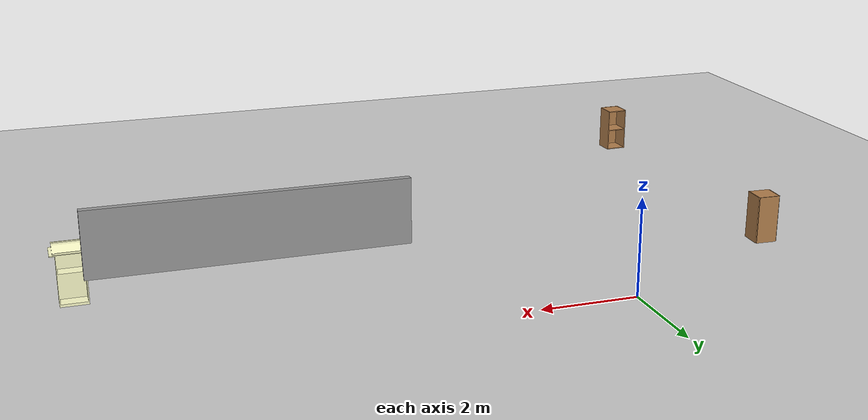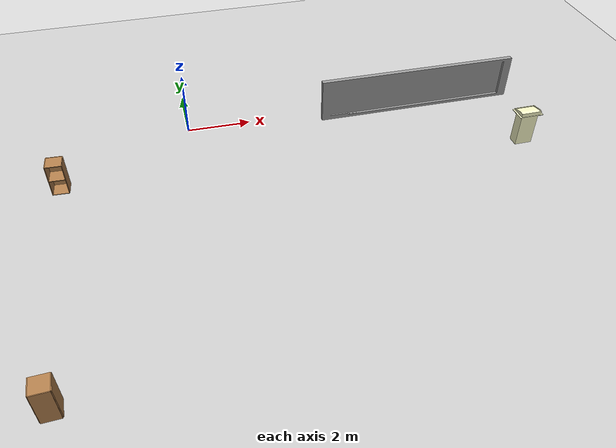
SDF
<sdf version="1.6">
 <world name="default">
  <model name="ground_plane">
   <static>1</static>
   <link name="link">
    <collision name="collision">
     <geometry><plane><normal>0 0 1</normal><size>100 100</size></plane></geometry>
     <surface>
      <contact><collide_bitmask>65535</collide_bitmask></contact>
      <friction><ode><mu>100</mu><mu2>50</mu2></ode></friction>
     </surface>
    </collision>
    <visual name="visual">
     <cast_shadows>0</cast_shadows>
     <geometry><plane><normal>0 0 1</normal><size>100 100</size></plane></geometry>
     <material>
      <script><uri>file://media/materials/scripts/gazebo.material</uri><name>Gazebo/Grey</name></script>
     </material>
    </visual>
   </link>
  </model>
  <model name="black_board_clone">
   <link name="link_6">
    <pose>1e-06 5e-06 0 0 0 -1.57362</pose>
    <inertial>
     <mass>1</mass>
     <inertia>
      <ixx>0.166667</ixx>
      <ixy>0</ixy>
      <ixz>0</ixz>
      <iyy>0.166667</iyy>
      <iyz>0</iyz>
      <izz>0.166667</izz>
     </inertia>
    </inertial>
    <visual name="visual">
     <geometry>
      <mesh>
       <uri>/home/piyush/rm100/src/robomuse_simulation/models/meshes/black_board/model.dae</uri>
       <scale>1 3 1</scale>
      </mesh>
     </geometry>
     <material>
      <lighting>1</lighting>
      <script><uri>file://media/materials/scripts/gazebo.material</uri><name>Gazebo/Grey</name></script>
      <shader type="pixel"><normal_map>__default__</normal_map></shader>
      <ambient>0.3 0.3 0.3 1</ambient>
      <diffuse>0.7 0.7 0.7 1</diffuse>
      <specular>0.01 0.01 0.01 1</specular>
      <emissive>0 0 0 1</emissive>
     </material>
    </visual>
    <collision name="collision">
     <geometry>
      <mesh>
       <uri>/home/piyush/rm100/src/robomuse_simulation/models/meshes/black_board/model.dae</uri>
       <scale>1 3 1</scale>
      </mesh>
     </geometry>
     <surface>
      <friction>
       <ode><mu>1</mu><mu2>1</mu2><fdir1>0 0 0</fdir1><slip1>0</slip1><slip2>0</slip2></ode>
       <torsional>
        <coefficient>1</coefficient>
        <patch_radius>0</patch_radius>
        <surface_radius>0</surface_radius>
        <use_patch_radius>1</use_patch_radius>
        <ode><slip>0</slip></ode>
       </torsional>
      </friction>
      <bounce><restitution_coefficient>0</restitution_coefficient><threshold>1e+06</threshold></bounce>
      <contact>
       <collide_without_contact>0</collide_without_contact>
       <collide_without_contact_bitmask>1</collide_without_contact_bitmask>
       <collide_bitmask>1</collide_bitmask>
       <ode>
        <soft_cfm>0</soft_cfm>
        <soft_erp>0.2</soft_erp>
        <kp>1e+13</kp>
        <kd>1</kd>
        <max_vel>0.01</max_vel>
        <min_depth>0</min_depth>
       </ode>
       <bullet>
        <split_impulse>1</split_impulse>
        <split_impulse_penetration_threshold>-0.01</split_impulse_penetration_threshold>
        <soft_cfm>0</soft_cfm>
        <soft_erp>0.2</soft_erp>
        <kp>1e+13</kp>
        <kd>1</kd>
       </bullet>
      </contact>
     </surface>
    </collision>
   </link>
   <static>1</static>
   <pose>10.088 -2.66438 0.439748 0 -0 3.13693</pose>
  </model>
  <model name="lecture_stand_0">
   <link name="link_0">
    <inertial>
     <mass>10</mass>
     <inertia>
      <ixx>0.166667</ixx>
      <ixy>0</ixy>
      <ixz>0</ixz>
      <iyy>0.166667</iyy>
      <iyz>0</iyz>
      <izz>0.166667</izz>
     </inertia>
    </inertial>
    <visual name="visual">
     <geometry>
      <mesh>
       <uri>/home/piyush/rm100/src/robomuse_simulation/models/meshes/lecture_stand/model.dae</uri>
       <scale>1.1 1.1 1.1</scale>
      </mesh>
     </geometry>
     <material>
      <lighting>1</lighting>
      <script><uri>file://media/materials/scripts/gazebo.material</uri><name>Gazebo/Grey</name></script>
      <shader type="normal_map_tangent_space"><normal_map>__default__</normal_map></shader>
      <ambient>0.126 0.099 0.016 1</ambient>
      <diffuse>1 1 0.8 1</diffuse>
      <specular>0.01 0.01 0.01 1</specular>
      <emissive>0 0 0 1</emissive>
     </material>
    </visual>
    <collision name="collision">
     <geometry>
      <mesh>
       <uri>/home/piyush/rm100/src/robomuse_simulation/models/meshes/lecture_stand/model.dae</uri>
       <scale>1.1 1.1 1.1</scale>
      </mesh>
     </geometry>
     <surface>
      <friction>
       <ode><mu>1</mu><mu2>1</mu2><fdir1>0 0 0</fdir1><slip1>0</slip1><slip2>0</slip2></ode>
       <torsional>
        <coefficient>1</coefficient>
        <patch_radius>0</patch_radius>
        <surface_radius>0</surface_radius>
        <use_patch_radius>1</use_patch_radius>
        <ode><slip>0</slip></ode>
       </torsional>
      </friction>
      <bounce><restitution_coefficient>0</restitution_coefficient><threshold>1e+06</threshold></bounce>
      <contact>
       <collide_without_contact>0</collide_without_contact>
       <collide_without_contact_bitmask>1</collide_without_contact_bitmask>
       <collide_bitmask>1</collide_bitmask>
       <ode>
        <soft_cfm>0</soft_cfm>
        <soft_erp>0.2</soft_erp>
        <kp>1e+13</kp>
        <kd>1</kd>
        <max_vel>0.01</max_vel>
        <min_depth>0</min_depth>
       </ode>
       <bullet>
        <split_impulse>1</split_impulse>
        <split_impulse_penetration_threshold>-0.01</split_impulse_penetration_threshold>
        <soft_cfm>0</soft_cfm>
        <soft_erp>0.2</soft_erp>
        <kp>1e+13</kp>
        <kd>1</kd>
       </bullet>
      </contact>
     </surface>
    </collision>
   </link>
   <static>1</static>
   <pose>8.32938 -3.73875 0 0 -0 0</pose>
  </model>
  <model name="cabinet">
   <static>1</static>
   <link name="cabinet_bottom_plate">
    <inertial>
     <pose>0 0 -1 0 -0 0</pose>
     <inertia><ixx>2.05</ixx><ixy>0</ixy><ixz>0</ixz><iyy>2.05</iyy><iyz>0</iyz><izz>2.05</izz></inertia>
     <mass>25</mass>
    </inertial>
    <collision name="cabinet_bottom_plate_geom">
     <pose>0 0 0.01 0 -0 0</pose>
     <geometry><box><size>0.45 0.45 0.02</size></box></geometry>
    </collision>
    <visual name="cabinet_bottom_plate_geom_visual">
     <pose>0 0 0.01 0 -0 0</pose>
     <geometry><box><size>0.45 0.45 0.02</size></box></geometry>
     <material>
      <script><uri>file://media/materials/scripts/gazebo.material</uri><name>Gazebo/Wood</name></script>
     </material>
    </visual>
    <collision name="cabinet_bottom_plate_geom_cabinet_back_plate">
     <pose>0.235 0 0.51 0 -0 0</pose>
     <geometry><box><size>0.02 0.45 1.02</size></box></geometry>
    </collision>
    <visual name="cabinet_bottom_plate_geom_cabinet_back_plate_visual">
     <pose>0.235 0 0.51 0 -0 0</pose>
     <geometry><box><size>0.02 0.45 1.02</size></box></geometry>
     <material>
      <script><uri>file://media/materials/scripts/gazebo.material</uri><name>Gazebo/Wood</name></script>
     </material>
    </visual>
    <collision name="cabinet_bottom_plate_geom_cabinet_left_plate">
     <pose>0 0.235 0.51 0 -0 0</pose>
     <geometry><box><size>0.45 0.02 1.02</size></box></geometry>
    </collision>
    <visual name="cabinet_bottom_plate_geom_cabinet_left_plate_visual">
     <pose>0 0.235 0.51 0 -0 0</pose>
     <geometry><box><size>0.45 0.02 1.02</size></box></geometry>
     <material>
      <script><uri>file://media/materials/scripts/gazebo.material</uri><name>Gazebo/Wood</name></script>
     </material>
    </visual>
    <collision name="cabinet_bottom_plate_geom_cabinet_middle_plate">
     <pose>0 0 0.51 0 -0 0</pose>
     <geometry><box><size>0.45 0.45 0.02</size></box></geometry>
    </collision>
    <visual name="cabinet_bottom_plate_geom_cabinet_middle_plate_visual">
     <pose>0 0 0.51 0 -0 0</pose>
     <geometry><box><size>0.45 0.45 0.02</size></box></geometry>
     <material>
      <script><uri>file://media/materials/scripts/gazebo.material</uri><name>Gazebo/Wood</name></script>
     </material>
    </visual>
    <collision name="cabinet_bottom_plate_geom_cabinet_right_plate">
     <pose>0 -0.235 0.51 0 -0 0</pose>
     <geometry><box><size>0.45 0.02 1.02</size></box></geometry>
    </collision>
    <visual name="cabinet_bottom_plate_geom_cabinet_right_plate_visual">
     <pose>0 -0.235 0.51 0 -0 0</pose>
     <geometry><box><size>0.45 0.02 1.02</size></box></geometry>
     <material>
      <script><uri>file://media/materials/scripts/gazebo.material</uri><name>Gazebo/Wood</name></script>
     </material>
    </visual>
    <collision name="cabinet_bottom_plate_geom_cabinet_top_plate">
     <pose>0 0 1.01 0 -0 0</pose>
     <geometry><box><size>0.45 0.45 0.02</size></box></geometry>
    </collision>
    <visual name="cabinet_bottom_plate_geom_cabinet_top_plate_visual">
     <pose>0 0 1.01 0 -0 0</pose>
     <geometry><box><size>0.45 0.45 0.02</size></box></geometry>
     <material>
      <script><uri>file://media/materials/scripts/gazebo.material</uri><name>Gazebo/Wood</name></script>
     </material>
    </visual>
   </link>
   <pose>-4.04321 -9.41568 0 0 0 -1.53384</pose>
  </model>
  <model name="cabinet_clone_0_clone">
   <static>1</static>
   <link name="cabinet_bottom_plate">
    <inertial>
     <pose>0 0 -1 0 -0 0</pose>
     <inertia><ixx>2.05</ixx><ixy>0</ixy><ixz>0</ixz><iyy>2.05</iyy><iyz>0</iyz><izz>2.05</izz></inertia>
     <mass>25</mass>
    </inertial>
    <collision name="cabinet_bottom_plate_geom">
     <pose>0 0 0.01 0 -0 0</pose>
     <geometry><box><size>0.45 0.45 0.02</size></box></geometry>
    </collision>
    <visual name="cabinet_bottom_plate_geom_visual">
     <pose>0 0 0.01 0 -0 0</pose>
     <geometry><box><size>0.45 0.45 0.02</size></box></geometry>
     <material>
      <script><uri>file://media/materials/scripts/gazebo.material</uri><name>Gazebo/Wood</name></script>
     </material>
    </visual>
    <collision name="cabinet_bottom_plate_geom_cabinet_back_plate">
     <pose>0.235 0 0.51 0 -0 0</pose>
     <geometry><box><size>0.02 0.45 1.02</size></box></geometry>
    </collision>
    <visual name="cabinet_bottom_plate_geom_cabinet_back_plate_visual">
     <pose>0.235 0 0.51 0 -0 0</pose>
     <geometry><box><size>0.02 0.45 1.02</size></box></geometry>
     <material>
      <script><uri>file://media/materials/scripts/gazebo.material</uri><name>Gazebo/Wood</name></script>
     </material>
    </visual>
    <collision name="cabinet_bottom_plate_geom_cabinet_left_plate">
     <pose>0 0.235 0.51 0 -0 0</pose>
     <geometry><box><size>0.45 0.02 1.02</size></box></geometry>
    </collision>
    <visual name="cabinet_bottom_plate_geom_cabinet_left_plate_visual">
     <pose>0 0.235 0.51 0 -0 0</pose>
     <geometry><box><size>0.45 0.02 1.02</size></box></geometry>
     <material>
      <script><uri>file://media/materials/scripts/gazebo.material</uri><name>Gazebo/Wood</name></script>
     </material>
    </visual>
    <collision name="cabinet_bottom_plate_geom_cabinet_middle_plate">
     <pose>0 0 0.51 0 -0 0</pose>
     <geometry><box><size>0.45 0.45 0.02</size></box></geometry>
    </collision>
    <visual name="cabinet_bottom_plate_geom_cabinet_middle_plate_visual">
     <pose>0 0 0.51 0 -0 0</pose>
     <geometry><box><size>0.45 0.45 0.02</size></box></geometry>
     <material>
      <script><uri>file://media/materials/scripts/gazebo.material</uri><name>Gazebo/Wood</name></script>
     </material>
    </visual>
    <collision name="cabinet_bottom_plate_geom_cabinet_right_plate">
     <pose>0 -0.235 0.51 0 -0 0</pose>
     <geometry><box><size>0.45 0.02 1.02</size></box></geometry>
    </collision>
    <visual name="cabinet_bottom_plate_geom_cabinet_right_plate_visual">
     <pose>0 -0.235 0.51 0 -0 0</pose>
     <geometry><box><size>0.45 0.02 1.02</size></box></geometry>
     <material>
      <script><uri>file://media/materials/scripts/gazebo.material</uri><name>Gazebo/Wood</name></script>
     </material>
    </visual>
    <collision name="cabinet_bottom_plate_geom_cabinet_top_plate">
     <pose>0 0 1.01 0 -0 0</pose>
     <geometry><box><size>0.45 0.45 0.02</size></box></geometry>
    </collision>
    <visual name="cabinet_bottom_plate_geom_cabinet_top_plate_visual">
     <pose>0 0 1.01 0 -0 0</pose>
     <geometry><box><size>0.45 0.45 0.02</size></box></geometry>
     <material>
      <script><uri>file://media/materials/scripts/gazebo.material</uri><name>Gazebo/Wood</name></script>
     </material>
    </visual>
   </link>
   <pose>-3.97377 -2.02824 0 0 -0 1.51829</pose>
  </model>
 </world>
</sdf>
